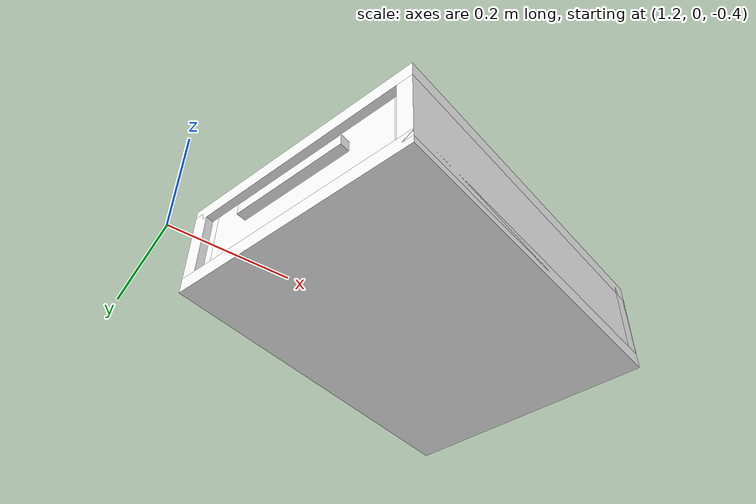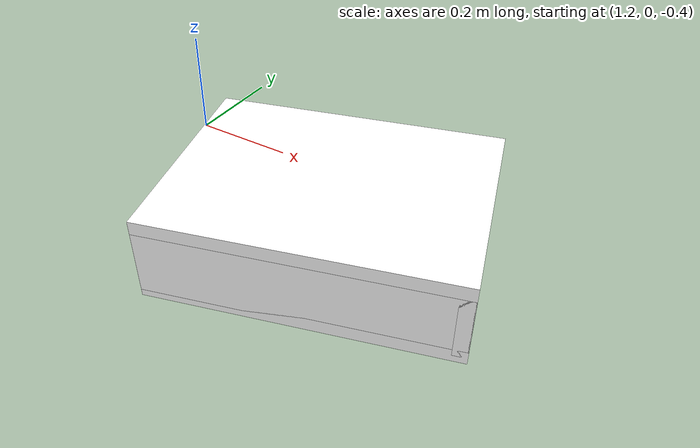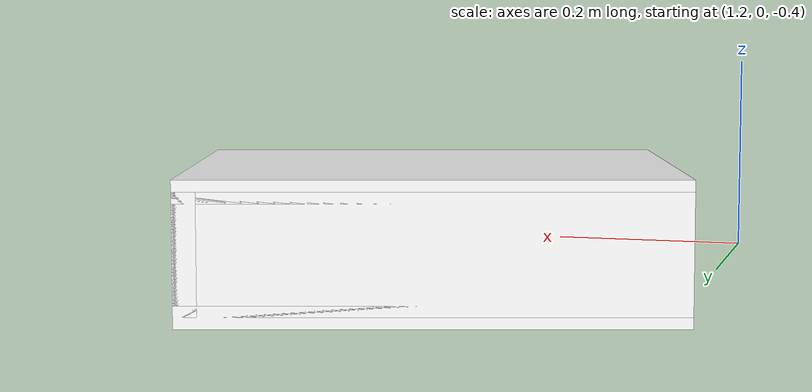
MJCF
<mujoco model="drawer">
        <compiler angle="radian" eulerseq='zxy' />
        <option gravity = "0 0 0" />
        <option>
            <flag contact = "disable"/>
        </option>
        <statistic	extent="1.0" center="0.0 0.0 0.0"/>
        <visual>
            <map fogstart="3" fogend="5" force="0.1" znear=" 0.100000 " zfar=" 12.000000 "/>
        </visual>
        <size njmax="500" nconmax="100" />
        <actuator>
            <velocity joint="drawerJ" name="viva_revolution" kv='10'></velocity>
        </actuator>
        <asset>
            <texture builtin="flat" name="objtex" height="32" width="32" rgb1="1 1 1" type="cube"></texture>
            <texture builtin="flat" name="handletex" height="32" width="32" rgb1="1 1 1" type="cube"></texture>
            <material name="geomObj" shininess="0.03" specular="0.75" texture="objtex"></material>
            <material name="geomHandle" shininess="0.03" specular="0.75" texture="handletex"></material>
        </asset>
        <worldbody>
            <body name="cabinet_bottom" pos= " 1.579915 -0.103512 -0.481676 "  quat= " -0.140880 0.000000 0.000000 0.990027" >
                <inertial pos="0 0 0" mass="1" diaginertia="1 1 1" />
                <geom size= " 0.286849 0.212129 0.013312 "  type="box" material="geomObj" name="b"/>
                <body name="cabinet_left" pos= " 0.000000 -0.198817 0.069542 " >
                    <inertial pos="0 0 0" mass="1" diaginertia="1 1 1" />
                    <geom size= " 0.286849 0.013312 0.069542 "  type="box" material="geomObj" name="c" />
                </body>
                <body name="cabinet_right" pos= " 0.000000 0.198817 0.069542 " >
                    <inertial pos="0 0 0" mass="1" diaginertia="1 1 1" />
                    <geom size= " 0.286849 0.013312 0.069542 "  type="box" material="geomObj" name="d" />
                </body>
                <body name="cabinet_top" pos= " 0.000000 0.000000 0.139085 " >
                    <inertial pos="0 0 0" mass="1" diaginertia="1 1 1" />
                    <geom size= " 0.286849 0.212129 0.013312 "  type="box" material="geomObj" name="e"/>
                </body>
                <body name="cabinet_back" pos= " -0.273537 0.000000 0.069542 "  >
                    <inertial pos="0 0 0" mass="1" diaginertia="1 1 1" />
                    <geom size= " 0.013312 0.212129 0.069542 "  type="box" material="geomObj" name="f" />
                </body>
                <body name="drawer" pos= " 0.000000 0.000000 0.006656 "  >
                    <geom size= " 0.273537 0.198817 0.013312 "  type="box" material="geomObj" name="ddddfadfadsfac" />
                    <joint name="drawerJ" pos="0 0 0" axis="1 0 0" type="slide" limited="true" range= "0  0.4302738904953003 "  />
                    <inertial pos="0 0 0" mass="1" diaginertia="1 1 1" />
                    <body name="drawer_left" pos= " 0.000000 -0.185505 0.069542 " >
                        <inertial pos="0 0 0" mass="1" diaginertia="1 1 1" />
                        <geom size= " 0.273537 0.013312 0.056230 "  type="box" material="geomObj" name="ddc" />
                    </body>
                    <body name="drawer_right" pos= " 0.000000 0.185505 0.069542 " >
                        <inertial pos="0 0 0" mass="1" diaginertia="1 1 1" />
                        <geom size= " 0.273537 0.013312 0.056230 "  type="box" material="geomObj" name="dddd" />
                    </body>
                    <body name="drawer_front" pos= " 0.260224 0.000000 0.069542 " >
                        <inertial pos="0 0 0" mass="1" diaginertia="1 1 1" />
                        <geom size= " 0.013312 0.198817 0.056230 "  type="box" material="geomObj" name="eeeee"/>
                    </body>
                    <body name="drawer_back" pos= " -0.273537 0.000000 0.069542 "  >
                        <inertial pos="0 0 0" mass="1" diaginertia="1 1 1" />
                        <geom size= " 0.013312 0.198817 0.056230 "  type="box" material="geomObj" name="fffff" />
                    </body>
                    <body name="knob" pos= " 0.286849 0.000000 0.069542 " >
                        <inertial pos="0 0 0" mass="0.1" diaginertia="0.1 0.1 0.1" />
                        <geom size= " 0.008029 0.098405 0.009720 "  pos="0 0 0" type="box" material="geomHandle" name="handle"/>
                    </body>
                </body>
            </body>
            <body name="external_camera_body_0" pos="0.0 0 0.00">
                <camera euler="-1.57 1.57 0.0" fovy=" 54.280851 " name="external_camera_0" pos="0.0 0 0"></camera>
                <inertial pos= " 0.00 0.0 0.000000 " mass="1" diaginertia="1 1 1" />
                <joint name="cam_j" pos="0.0 0 0" axis = "1 0 0" type="free" />
            </body>
        </worldbody>
    </mujoco>
